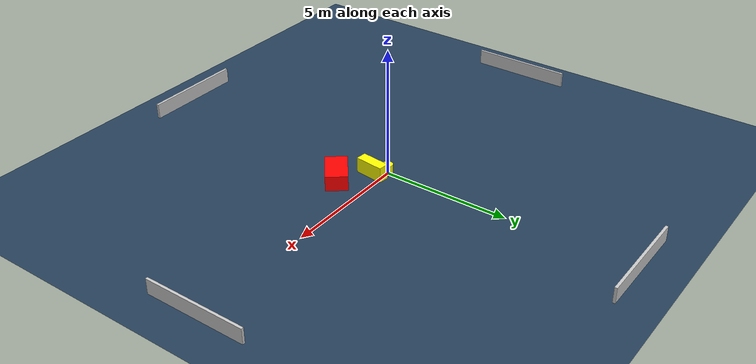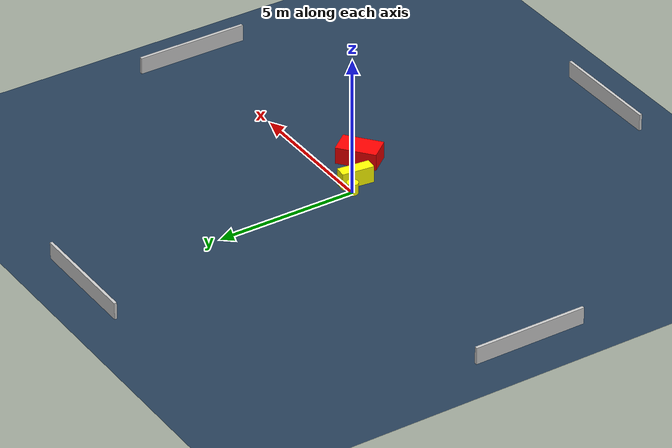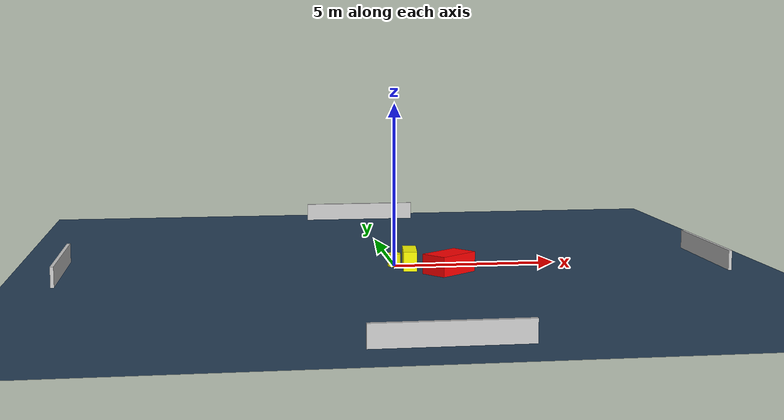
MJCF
<?xml version="1.0" ?>
<mujoco model="generated_environment">
  <option timestep="0.01" integrator="RK4" cone="elliptic"/>
  <default>
    <geom density="1"/>
  </default>
  <asset>
    <texture builtin="gradient" height="3072" name="skybox" rgb1="0.3 0.5 0.7" rgb2="0 0 0" type="skybox" width="512"/>
    <texture builtin="checker" height="300" name="groundplane" rgb1="0.2 0.3 0.4" rgb2="0.1 0.2 0.3" type="2d" width="300"/>
    <material name="groundplane" reflectance="0.2" texrepeat="5 5" texture="groundplane"/>
  </asset>
  <worldbody>
    <light dir="0 0 -1" directional="true" pos="0 0 1.5"/>
    <geom condim="3" friction="0.5 0.005 0.001" material="groundplane" name="floor" pos="0 0 0" size="0 0 0.05" type="plane"/>
    <body name="walls">
      <geom name="wall_1" condim="4" pos="-10.0 0.0 0.3" rgba="0.800000011920929 0.800000011920929 0.800000011920929 1.0" size="0.05 2.0 0.3" type="box"/>
      <geom name="wall_2" condim="4" pos="10.0 0.0 0.3" rgba="0.800000011920929 0.800000011920929 0.800000011920929 1.0" size="0.05 2.0 0.3" type="box"/>
      <geom name="wall_3" condim="4" pos="0.0 -10.0 0.3" rgba="0.800000011920929 0.800000011920929 0.800000011920929 1.0" size="2.0 0.05 0.3" type="box"/>
      <geom name="wall_4" condim="4" pos="0.0 10.0 0.3" rgba="0.800000011920929 0.800000011920929 0.800000011920929 1.0" size="2.0 0.05 0.3" type="box"/>
    </body>
    <body name="robot">
      <joint name="joint_x" type="slide" pos="0 0 0" axis="1 0 0"/>
      <joint name="joint_y" type="slide" pos="0 0 0" axis="0 1 0"/>
      <geom name="robot" type="cylinder" pos="0.0 0.0 0.2" size="0.2 0.2 0.0" mass="5.0" friction="1.0 0.005 0.0001" condim="4" rgba="1.0 1.0 0.0 1.0"/>
    </body>
    <body name="obstacle_1_movable">
      <geom name="obstacle_1_movable" condim="4" pos="0.4195157620203945 -0.39368290825354807 0.3" euler="0 0 353.70142184727854" friction="0.0 0.005 0.001" rgba="1.0 1.0 0.0 1.0" size="0.20787643001753736 0.5691821965371033 0.3" type="box" mass="0.1"/>
      <joint type="free"/>
    </body>
    <body name="obstacle_2_static">
      <geom name="obstacle_2_static" condim="4" pos="1.4863530972611854 -1.23570929462077 0.3" euler="0 0 308.63495295469755" friction="0.0 0.005 0.001" rgba="1.0 0.0 0.0 1.0" size="0.4219725746711174 0.7055781919011457 0.3" type="box"/>
    </body>
  </worldbody>
  <actuator>
    <motor name="actuator_x" joint="joint_x" gear="1" ctrlrange="-1 1"/>
    <motor name="actuator_y" joint="joint_y" gear="1" ctrlrange="-1 1"/>
  </actuator>
</mujoco>
